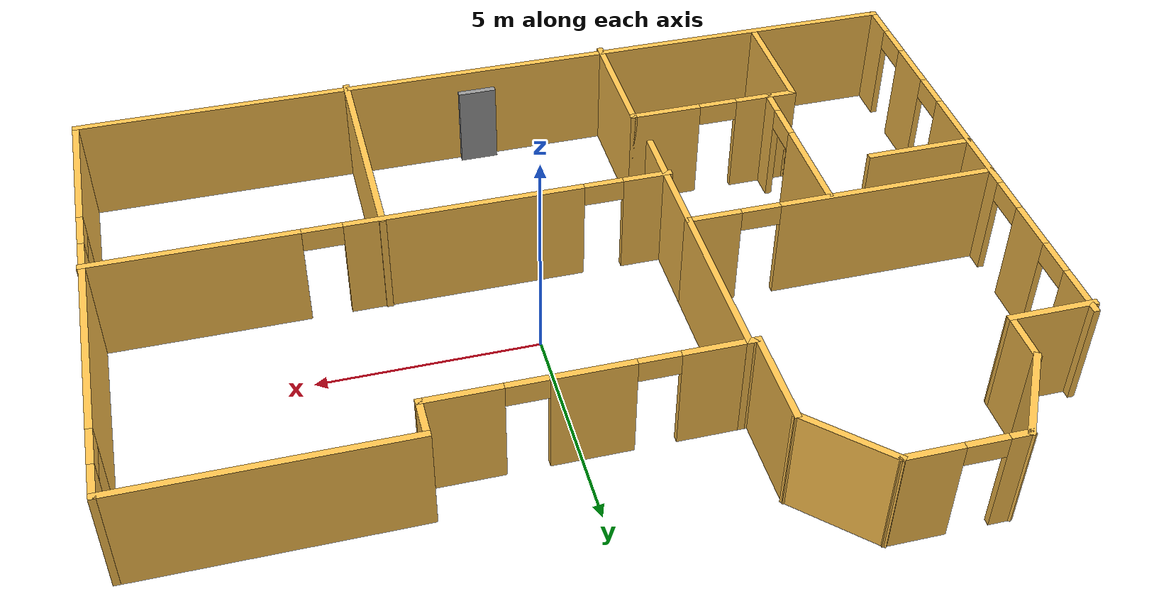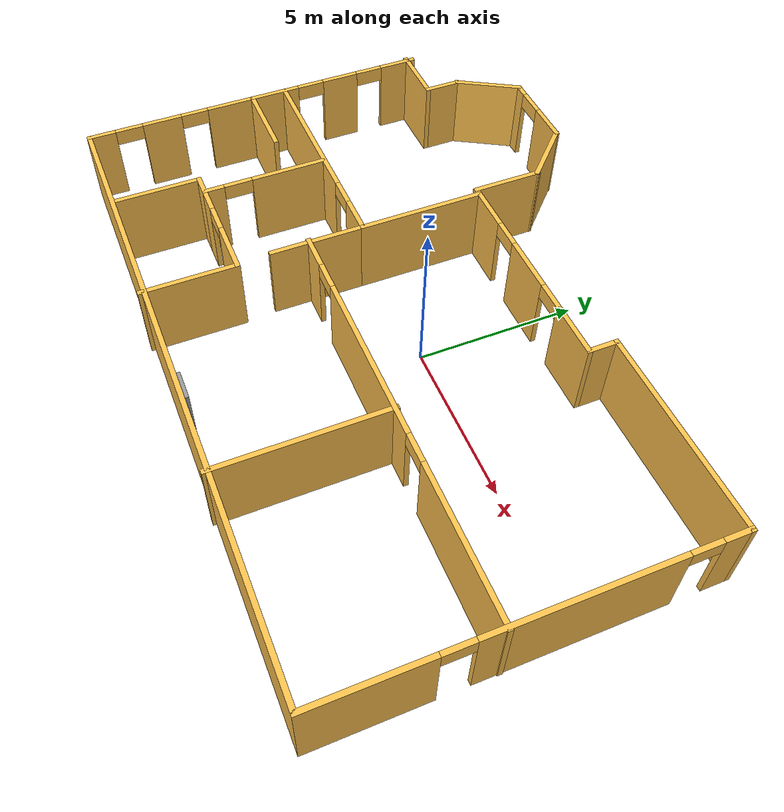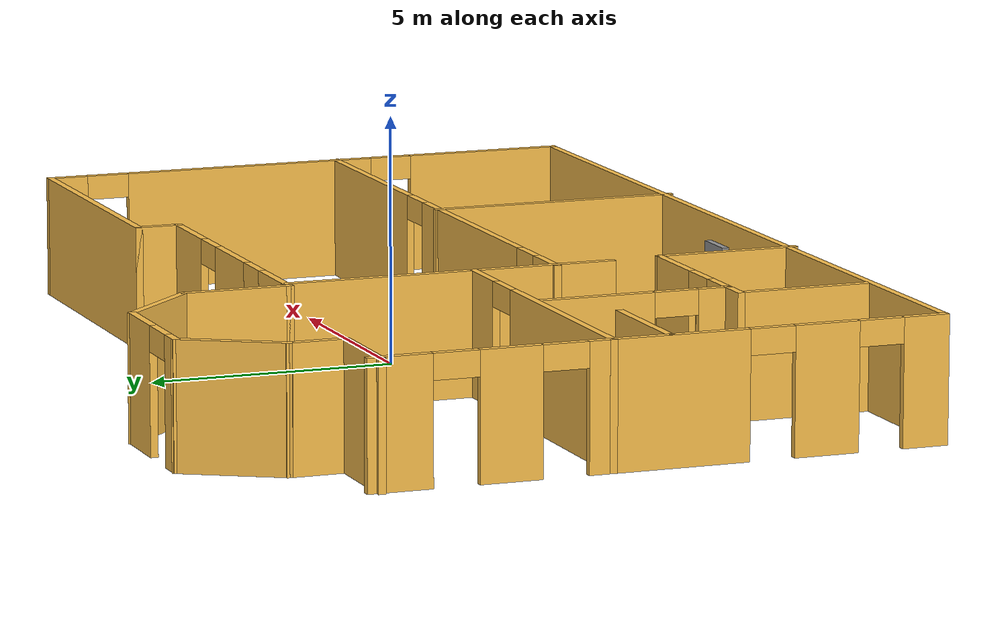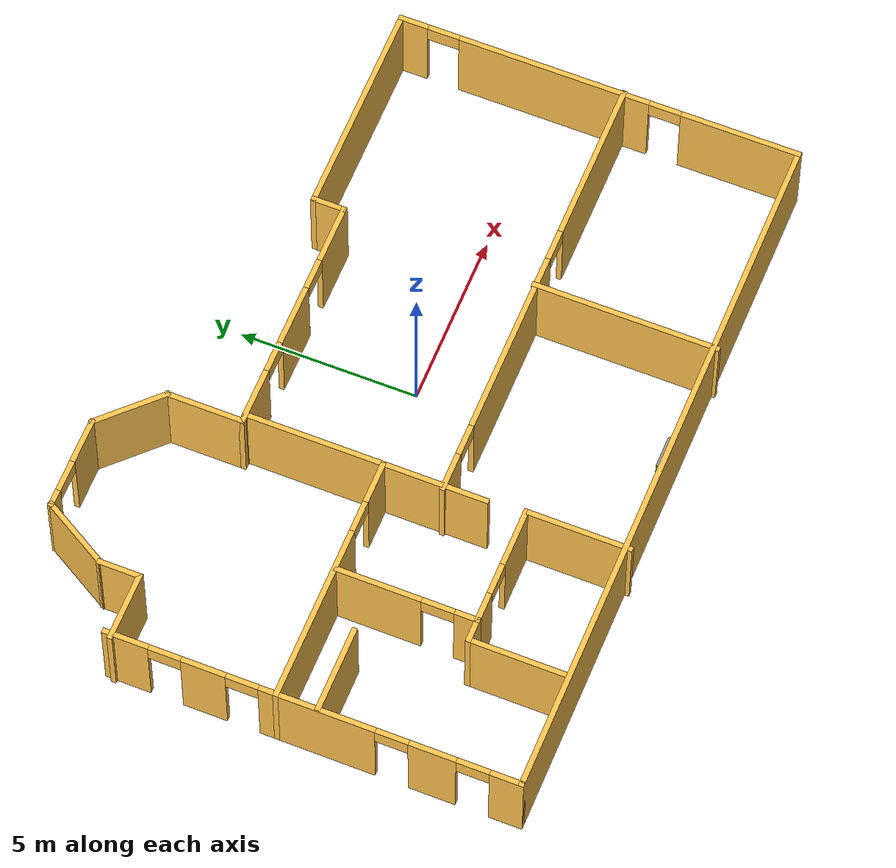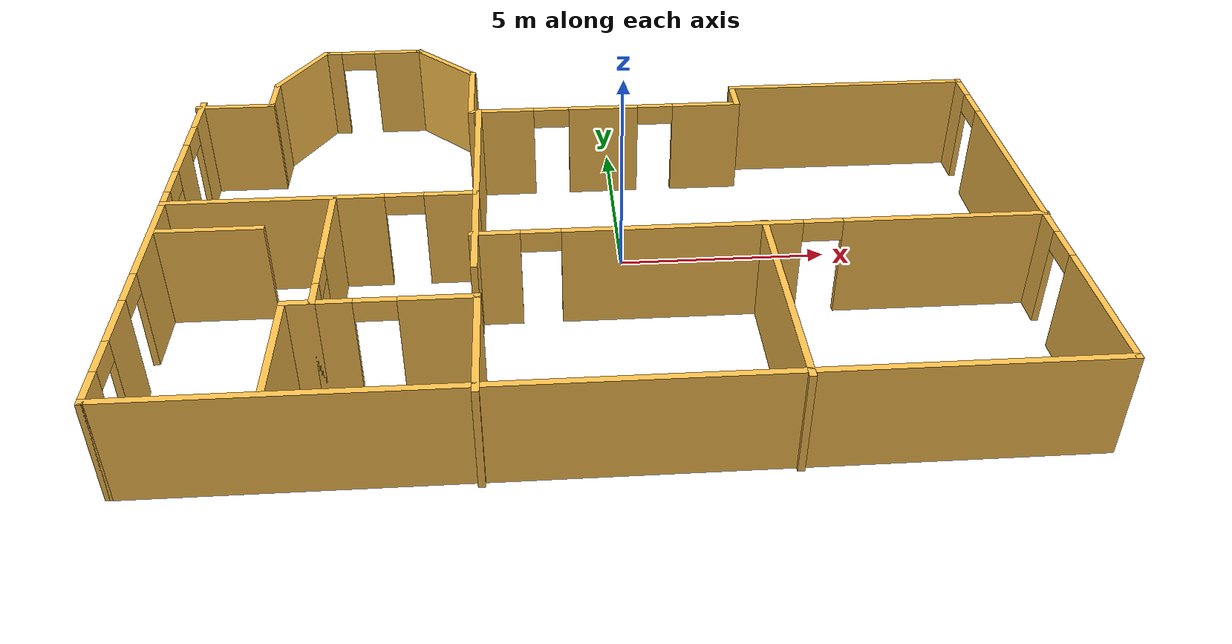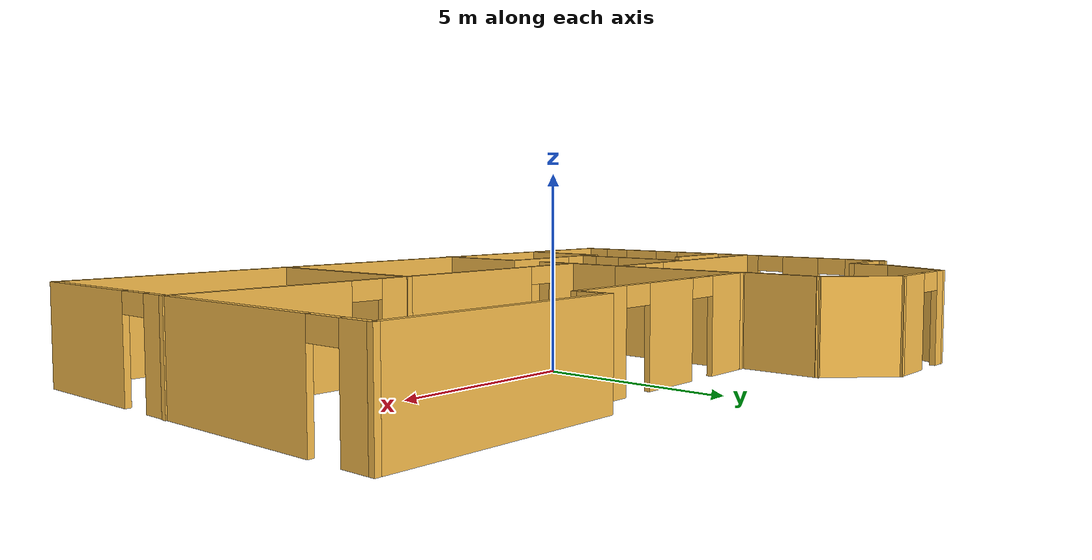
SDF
<?xml version='1.0'?>
<sdf version='1.7'>
  <model name='nha2'>
    <pose>-0.613802 -0.118718 0 0 -0 0</pose>
    <link name='Door_12'>
      <collision name='Door_12_Collision'>
        <geometry>
          <box>
            <size>0.9 0.17 2</size>
          </box>
        </geometry>
        <pose>0 0 1 0 -0 0</pose>
      </collision>
      <visual name='Door_12_Visual'>
        <pose>0 0 1 0 -0 0</pose>
        <geometry>
          <box>
            <size>0.9 0.17 2</size>
          </box>
        </geometry>
        <material>
          <script>
            <uri>file://media/materials/scripts/gazebo.material</uri>
            <name>Gazebo/Grey</name>
          </script>
        </material>
      </visual>
      <pose>0.495654 -6.86658 0 0 -0 0</pose>
    </link>
    <link name='Wall_0'>
      <pose>-9.89882 -1.32378 0 0 -0 -1.5708</pose>
      <visual name='Wall_0_Visual_0'>
        <pose>-5.11418 0 1.25 0 -0 0</pose>
        <geometry>
          <box>
            <size>1.27165 0.15 2.5</size>
          </box>
        </geometry>
        <material>
          <script>
            <uri>file://media/materials/scripts/gazebo.material</uri>
            <name>Gazebo/Grey</name>
          </script>
          <ambient>1 0.764706 0.305882 1</ambient>
        </material>
        <meta>
          <layer>0</layer>
        </meta>
      </visual>
      <collision name='Wall_0_Collision_0'>
        <geometry>
          <box>
            <size>1.27165 0.15 2.5</size>
          </box>
        </geometry>
        <pose>-5.11418 0 1.25 0 -0 0</pose>
      </collision>
      <visual name='Wall_0_Visual_1'>
        <pose>-2.96489 0 1.25 0 -0 0</pose>
        <geometry>
          <box>
            <size>1.22692 0.15 2.5</size>
          </box>
        </geometry>
        <material>
          <script>
            <uri>file://media/materials/scripts/gazebo.material</uri>
            <name>Gazebo/Grey</name>
          </script>
          <ambient>1 0.764706 0.305882 1</ambient>
        </material>
        <meta>
          <layer>0</layer>
        </meta>
      </visual>
      <collision name='Wall_0_Collision_1'>
        <geometry>
          <box>
            <size>1.22692 0.15 2.5</size>
          </box>
        </geometry>
        <pose>-2.96489 0 1.25 0 -0 0</pose>
      </collision>
      <visual name='Wall_0_Visual_2'>
        <pose>0.13973 0 1.25 0 -0 0</pose>
        <geometry>
          <box>
            <size>3.18232 0.15 2.5</size>
          </box>
        </geometry>
        <material>
          <script>
            <uri>file://media/materials/scripts/gazebo.material</uri>
            <name>Gazebo/Grey</name>
          </script>
          <ambient>1 0.764706 0.305882 1</ambient>
        </material>
        <meta>
          <layer>0</layer>
        </meta>
      </visual>
      <collision name='Wall_0_Collision_2'>
        <geometry>
          <box>
            <size>3.18232 0.15 2.5</size>
          </box>
        </geometry>
        <pose>0.13973 0 1.25 0 -0 0</pose>
      </collision>
      <visual name='Wall_0_Visual_3'>
        <pose>3.27866 0 1.25 0 -0 0</pose>
        <geometry>
          <box>
            <size>1.29553 0.15 2.5</size>
          </box>
        </geometry>
        <material>
          <script>
            <uri>file://media/materials/scripts/gazebo.material</uri>
            <name>Gazebo/Grey</name>
          </script>
          <ambient>1 0.764706 0.305882 1</ambient>
        </material>
        <meta>
          <layer>0</layer>
        </meta>
      </visual>
      <collision name='Wall_0_Collision_3'>
        <geometry>
          <box>
            <size>1.29553 0.15 2.5</size>
          </box>
        </geometry>
        <pose>3.27866 0 1.25 0 -0 0</pose>
      </collision>
      <visual name='Wall_0_Visual_4'>
        <pose>5.28821 0 1.25 0 -0 0</pose>
        <geometry>
          <box>
            <size>0.923578 0.15 2.5</size>
          </box>
        </geometry>
        <material>
          <script>
            <uri>file://media/materials/scripts/gazebo.material</uri>
            <name>Gazebo/Grey</name>
          </script>
          <ambient>1 0.764706 0.305882 1</ambient>
        </material>
        <meta>
          <layer>0</layer>
        </meta>
      </visual>
      <collision name='Wall_0_Collision_4'>
        <geometry>
          <box>
            <size>0.923578 0.15 2.5</size>
          </box>
        </geometry>
        <pose>5.28821 0 1.25 0 -0 0</pose>
      </collision>
      <visual name='Wall_0_Visual_5'>
        <pose>-4.02835 0 2.25 0 -0 0</pose>
        <geometry>
          <box>
            <size>0.9 0.15 0.5</size>
          </box>
        </geometry>
        <material>
          <script>
            <uri>file://media/materials/scripts/gazebo.material</uri>
            <name>Gazebo/Grey</name>
          </script>
          <ambient>1 0.764706 0.305882 1</ambient>
        </material>
        <meta>
          <layer>0</layer>
        </meta>
      </visual>
      <collision name='Wall_0_Collision_5'>
        <geometry>
          <box>
            <size>0.9 0.15 0.5</size>
          </box>
        </geometry>
        <pose>-4.02835 0 2.25 0 -0 0</pose>
      </collision>
      <visual name='Wall_0_Visual_6'>
        <pose>-1.90143 0 2.25 0 -0 0</pose>
        <geometry>
          <box>
            <size>0.9 0.15 0.5</size>
          </box>
        </geometry>
        <material>
          <script>
            <uri>file://media/materials/scripts/gazebo.material</uri>
            <name>Gazebo/Grey</name>
          </script>
          <ambient>1 0.764706 0.305882 1</ambient>
        </material>
        <meta>
          <layer>0</layer>
        </meta>
      </visual>
      <collision name='Wall_0_Collision_6'>
        <geometry>
          <box>
            <size>0.9 0.15 0.5</size>
          </box>
        </geometry>
        <pose>-1.90143 0 2.25 0 -0 0</pose>
      </collision>
      <visual name='Wall_0_Visual_7'>
        <pose>2.18089 0 2.25 0 -0 0</pose>
        <geometry>
          <box>
            <size>0.9 0.15 0.5</size>
          </box>
        </geometry>
        <material>
          <script>
            <uri>file://media/materials/scripts/gazebo.material</uri>
            <name>Gazebo/Grey</name>
          </script>
          <ambient>1 0.764706 0.305882 1</ambient>
        </material>
        <meta>
          <layer>0</layer>
        </meta>
      </visual>
      <collision name='Wall_0_Collision_7'>
        <geometry>
          <box>
            <size>0.9 0.15 0.5</size>
          </box>
        </geometry>
        <pose>2.18089 0 2.25 0 -0 0</pose>
      </collision>
      <visual name='Wall_0_Visual_8'>
        <pose>4.37642 0 2.25 0 -0 0</pose>
        <geometry>
          <box>
            <size>0.9 0.15 0.5</size>
          </box>
        </geometry>
        <material>
          <script>
            <uri>file://media/materials/scripts/gazebo.material</uri>
            <name>Gazebo/Grey</name>
          </script>
          <ambient>1 0.764706 0.305882 1</ambient>
        </material>
        <meta>
          <layer>0</layer>
        </meta>
      </visual>
      <collision name='Wall_0_Collision_8'>
        <geometry>
          <box>
            <size>0.9 0.15 0.5</size>
          </box>
        </geometry>
        <pose>4.37642 0 2.25 0 -0 0</pose>
      </collision>
    </link>
    <link name='Wall_1'>
      <collision name='Wall_1_Collision'>
        <geometry>
          <box>
            <size>20 0.15 2.5</size>
          </box>
        </geometry>
        <pose>0 0 1.25 0 -0 0</pose>
      </collision>
      <visual name='Wall_1_Visual'>
        <pose>0 0 1.25 0 -0 0</pose>
        <geometry>
          <box>
            <size>20 0.15 2.5</size>
          </box>
        </geometry>
        <material>
          <script>
            <uri>file://media/materials/scripts/gazebo.material</uri>
            <name>Gazebo/Grey</name>
          </script>
          <ambient>1 0.764706 0.305882 1</ambient>
        </material>
        <meta>
          <layer>0</layer>
        </meta>
      </visual>
      <pose>0.02618 -6.99878 0 0 -0 0</pose>
    </link>
    <link name='Wall_15'>
      <collision name='Wall_15_Collision'>
        <geometry>
          <box>
            <size>1.25 0.15 2.5</size>
          </box>
        </geometry>
        <pose>0 0 1.25 0 -0 0</pose>
      </collision>
      <visual name='Wall_15_Visual'>
        <pose>0 0 1.25 0 -0 0</pose>
        <geometry>
          <box>
            <size>1.25 0.15 2.5</size>
          </box>
        </geometry>
        <material>
          <script>
            <uri>file://media/materials/scripts/gazebo.material</uri>
            <name>Gazebo/Grey</name>
          </script>
          <ambient>1 0.764706 0.305882 1</ambient>
        </material>
        <meta>
          <layer>0</layer>
        </meta>
      </visual>
      <pose>-8.13374 4.71749 0 0 -0 -1.5708</pose>
    </link>
    <link name='Wall_16'>
      <collision name='Wall_16_Collision'>
        <geometry>
          <box>
            <size>2 0.15 2.5</size>
          </box>
        </geometry>
        <pose>0 0 1.25 0 -0 0</pose>
      </collision>
      <visual name='Wall_16_Visual'>
        <pose>0 0 1.25 0 -0 0</pose>
        <geometry>
          <box>
            <size>2 0.15 2.5</size>
          </box>
        </geometry>
        <material>
          <script>
            <uri>file://media/materials/scripts/gazebo.material</uri>
            <name>Gazebo/Grey</name>
          </script>
          <ambient>1 0.764706 0.305882 1</ambient>
        </material>
        <meta>
          <layer>0</layer>
        </meta>
      </visual>
      <pose>-9.05874 4.16749 0 0 -0 3.14159</pose>
    </link>
    <link name='Wall_18'>
      <pose>-6.34882 -0.348596 0 0 -0 0</pose>
      <visual name='Wall_18_Visual_0'>
        <pose>-1.08524 0 1.25 0 -0 0</pose>
        <geometry>
          <box>
            <size>5.07953 0.15 2.5</size>
          </box>
        </geometry>
        <material>
          <script>
            <uri>file://media/materials/scripts/gazebo.material</uri>
            <name>Gazebo/Grey</name>
          </script>
          <ambient>1 0.764706 0.305882 1</ambient>
        </material>
        <meta>
          <layer>0</layer>
        </meta>
      </visual>
      <collision name='Wall_18_Collision_0'>
        <geometry>
          <box>
            <size>5.07953 0.15 2.5</size>
          </box>
        </geometry>
        <pose>-1.08524 0 1.25 0 -0 0</pose>
      </collision>
      <visual name='Wall_18_Visual_1'>
        <pose>2.98976 0 1.25 0 -0 0</pose>
        <geometry>
          <box>
            <size>1.27047 0.15 2.5</size>
          </box>
        </geometry>
        <material>
          <script>
            <uri>file://media/materials/scripts/gazebo.material</uri>
            <name>Gazebo/Grey</name>
          </script>
          <ambient>1 0.764706 0.305882 1</ambient>
        </material>
        <meta>
          <layer>0</layer>
        </meta>
      </visual>
      <collision name='Wall_18_Collision_1'>
        <geometry>
          <box>
            <size>1.27047 0.15 2.5</size>
          </box>
        </geometry>
        <pose>2.98976 0 1.25 0 -0 0</pose>
      </collision>
      <visual name='Wall_18_Visual_2'>
        <pose>1.90453 0 2.25 0 -0 0</pose>
        <geometry>
          <box>
            <size>0.9 0.15 0.5</size>
          </box>
        </geometry>
        <material>
          <script>
            <uri>file://media/materials/scripts/gazebo.material</uri>
            <name>Gazebo/Grey</name>
          </script>
          <ambient>1 0.764706 0.305882 1</ambient>
        </material>
        <meta>
          <layer>0</layer>
        </meta>
      </visual>
      <collision name='Wall_18_Collision_2'>
        <geometry>
          <box>
            <size>0.9 0.15 0.5</size>
          </box>
        </geometry>
        <pose>1.90453 0 2.25 0 -0 0</pose>
      </collision>
    </link>
    <link name='Wall_19'>
      <collision name='Wall_19_Collision'>
        <geometry>
          <box>
            <size>4 0.15 2.5</size>
          </box>
        </geometry>
        <pose>0 0 1.25 0 -0 0</pose>
      </collision>
      <visual name='Wall_19_Visual'>
        <pose>0 0 1.25 0 -0 0</pose>
        <geometry>
          <box>
            <size>4 0.15 2.5</size>
          </box>
        </geometry>
        <material>
          <script>
            <uri>file://media/materials/scripts/gazebo.material</uri>
            <name>Gazebo/Grey</name>
          </script>
          <ambient>1 0.764706 0.305882 1</ambient>
        </material>
        <meta>
          <layer>0</layer>
        </meta>
      </visual>
      <pose>-2.79882 1.5764 0 0 -0 1.5708</pose>
    </link>
    <link name='Wall_2'>
      <pose>9.95118 -1.32378 0 0 -0 1.5708</pose>
      <visual name='Wall_2_Visual_0'>
        <pose>-4.05322 0 1.25 0 -0 0</pose>
        <geometry>
          <box>
            <size>3.39355 0.15 2.5</size>
          </box>
        </geometry>
        <material>
          <script>
            <uri>file://media/materials/scripts/gazebo.material</uri>
            <name>Gazebo/Grey</name>
          </script>
          <ambient>1 0.764706 0.305882 1</ambient>
        </material>
        <meta>
          <layer>0</layer>
        </meta>
      </visual>
      <collision name='Wall_2_Collision_0'>
        <geometry>
          <box>
            <size>3.39355 0.15 2.5</size>
          </box>
        </geometry>
        <pose>-4.05322 0 1.25 0 -0 0</pose>
      </collision>
      <visual name='Wall_2_Visual_1'>
        <pose>1.26678 0 1.25 0 -0 0</pose>
        <geometry>
          <box>
            <size>5.44646 0.15 2.5</size>
          </box>
        </geometry>
        <material>
          <script>
            <uri>file://media/materials/scripts/gazebo.material</uri>
            <name>Gazebo/Grey</name>
          </script>
          <ambient>1 0.764706 0.305882 1</ambient>
        </material>
        <meta>
          <layer>0</layer>
        </meta>
      </visual>
      <collision name='Wall_2_Collision_1'>
        <geometry>
          <box>
            <size>5.44646 0.15 2.5</size>
          </box>
        </geometry>
        <pose>1.26678 0 1.25 0 -0 0</pose>
      </collision>
      <visual name='Wall_2_Visual_2'>
        <pose>5.32001 0 1.25 0 -0 0</pose>
        <geometry>
          <box>
            <size>0.859987 0.15 2.5</size>
          </box>
        </geometry>
        <material>
          <script>
            <uri>file://media/materials/scripts/gazebo.material</uri>
            <name>Gazebo/Grey</name>
          </script>
          <ambient>1 0.764706 0.305882 1</ambient>
        </material>
        <meta>
          <layer>0</layer>
        </meta>
      </visual>
      <collision name='Wall_2_Collision_2'>
        <geometry>
          <box>
            <size>0.859987 0.15 2.5</size>
          </box>
        </geometry>
        <pose>5.32001 0 1.25 0 -0 0</pose>
      </collision>
      <visual name='Wall_2_Visual_3'>
        <pose>-1.90645 0 2.25 0 -0 0</pose>
        <geometry>
          <box>
            <size>0.9 0.15 0.5</size>
          </box>
        </geometry>
        <material>
          <script>
            <uri>file://media/materials/scripts/gazebo.material</uri>
            <name>Gazebo/Grey</name>
          </script>
          <ambient>1 0.764706 0.305882 1</ambient>
        </material>
        <meta>
          <layer>0</layer>
        </meta>
      </visual>
      <collision name='Wall_2_Collision_3'>
        <geometry>
          <box>
            <size>0.9 0.15 0.5</size>
          </box>
        </geometry>
        <pose>-1.90645 0 2.25 0 -0 0</pose>
      </collision>
      <visual name='Wall_2_Visual_4'>
        <pose>4.44001 0 2.25 0 -0 0</pose>
        <geometry>
          <box>
            <size>0.9 0.15 0.5</size>
          </box>
        </geometry>
        <material>
          <script>
            <uri>file://media/materials/scripts/gazebo.material</uri>
            <name>Gazebo/Grey</name>
          </script>
          <ambient>1 0.764706 0.305882 1</ambient>
        </material>
        <meta>
          <layer>0</layer>
        </meta>
      </visual>
      <collision name='Wall_2_Collision_4'>
        <geometry>
          <box>
            <size>0.9 0.15 0.5</size>
          </box>
        </geometry>
        <pose>4.44001 0 2.25 0 -0 0</pose>
      </collision>
    </link>
    <link name='Wall_21'>
      <pose>-6.05664 -2.34221 0 0 -0 -1.5708</pose>
      <visual name='Wall_21_Visual_0'>
        <pose>-0.79814 0 1.25 0 -0 0</pose>
        <geometry>
          <box>
            <size>2.40372 0.15 2.5</size>
          </box>
        </geometry>
        <material>
          <script>
            <uri>file://media/materials/scripts/gazebo.material</uri>
            <name>Gazebo/Grey</name>
          </script>
          <ambient>1 0.764706 0.305882 1</ambient>
        </material>
        <meta>
          <layer>0</layer>
        </meta>
      </visual>
      <collision name='Wall_21_Collision_0'>
        <geometry>
          <box>
            <size>2.40372 0.15 2.5</size>
          </box>
        </geometry>
        <pose>-0.79814 0 1.25 0 -0 0</pose>
      </collision>
      <visual name='Wall_21_Visual_1'>
        <pose>1.65186 0 1.25 0 -0 0</pose>
        <geometry>
          <box>
            <size>0.696279 0.15 2.5</size>
          </box>
        </geometry>
        <material>
          <script>
            <uri>file://media/materials/scripts/gazebo.material</uri>
            <name>Gazebo/Grey</name>
          </script>
          <ambient>1 0.764706 0.305882 1</ambient>
        </material>
        <meta>
          <layer>0</layer>
        </meta>
      </visual>
      <collision name='Wall_21_Collision_1'>
        <geometry>
          <box>
            <size>0.696279 0.15 2.5</size>
          </box>
        </geometry>
        <pose>1.65186 0 1.25 0 -0 0</pose>
      </collision>
      <visual name='Wall_21_Visual_2'>
        <pose>0.853721 0 2.25 0 -0 0</pose>
        <geometry>
          <box>
            <size>0.9 0.15 0.5</size>
          </box>
        </geometry>
        <material>
          <script>
            <uri>file://media/materials/scripts/gazebo.material</uri>
            <name>Gazebo/Grey</name>
          </script>
          <ambient>1 0.764706 0.305882 1</ambient>
        </material>
        <meta>
          <layer>0</layer>
        </meta>
      </visual>
      <collision name='Wall_21_Collision_2'>
        <geometry>
          <box>
            <size>0.9 0.15 0.5</size>
          </box>
        </geometry>
        <pose>0.853721 0 2.25 0 -0 0</pose>
      </collision>
    </link>
    <link name='Wall_22'>
      <collision name='Wall_22_Collision'>
        <geometry>
          <box>
            <size>0.75 0.15 2.5</size>
          </box>
        </geometry>
        <pose>0 0 1.25 0 -0 0</pose>
      </collision>
      <visual name='Wall_22_Visual'>
        <pose>0 0 1.25 0 -0 0</pose>
        <geometry>
          <box>
            <size>0.75 0.15 2.5</size>
          </box>
        </geometry>
        <material>
          <script>
            <uri>file://media/materials/scripts/gazebo.material</uri>
            <name>Gazebo/Grey</name>
          </script>
          <ambient>1 0.764706 0.305882 1</ambient>
        </material>
        <meta>
          <layer>0</layer>
        </meta>
      </visual>
      <pose>-6.35664 -4.26721 0 0 -0 3.14159</pose>
    </link>
    <link name='Wall_23'>
      <collision name='Wall_23_Collision'>
        <geometry>
          <box>
            <size>2.75 0.15 2.5</size>
          </box>
        </geometry>
        <pose>0 0 1.25 0 -0 0</pose>
      </collision>
      <visual name='Wall_23_Visual'>
        <pose>0 0 1.25 0 -0 0</pose>
        <geometry>
          <box>
            <size>2.75 0.15 2.5</size>
          </box>
        </geometry>
        <material>
          <script>
            <uri>file://media/materials/scripts/gazebo.material</uri>
            <name>Gazebo/Grey</name>
          </script>
          <ambient>1 0.764706 0.305882 1</ambient>
        </material>
        <meta>
          <layer>0</layer>
        </meta>
      </visual>
      <pose>-6.65664 -5.56721 0 0 -0 -1.5708</pose>
    </link>
    <link name='Wall_25'>
      <pose>-4.38164 -4.26721 0 0 -0 0</pose>
      <visual name='Wall_25_Visual_0'>
        <pose>-1.30285 0 1.25 0 -0 0</pose>
        <geometry>
          <box>
            <size>0.894292 0.15 2.5</size>
          </box>
        </geometry>
        <material>
          <script>
            <uri>file://media/materials/scripts/gazebo.material</uri>
            <name>Gazebo/Grey</name>
          </script>
          <ambient>1 0.764706 0.305882 1</ambient>
        </material>
        <meta>
          <layer>0</layer>
        </meta>
      </visual>
      <collision name='Wall_25_Collision_0'>
        <geometry>
          <box>
            <size>0.894292 0.15 2.5</size>
          </box>
        </geometry>
        <pose>-1.30285 0 1.25 0 -0 0</pose>
      </collision>
      <visual name='Wall_25_Visual_1'>
        <pose>0.897146 0 1.25 0 -0 0</pose>
        <geometry>
          <box>
            <size>1.70571 0.15 2.5</size>
          </box>
        </geometry>
        <material>
          <script>
            <uri>file://media/materials/scripts/gazebo.material</uri>
            <name>Gazebo/Grey</name>
          </script>
          <ambient>1 0.764706 0.305882 1</ambient>
        </material>
        <meta>
          <layer>0</layer>
        </meta>
      </visual>
      <collision name='Wall_25_Collision_1'>
        <geometry>
          <box>
            <size>1.70571 0.15 2.5</size>
          </box>
        </geometry>
        <pose>0.897146 0 1.25 0 -0 0</pose>
      </collision>
      <visual name='Wall_25_Visual_2'>
        <pose>-0.405708 0 2.25 0 -0 0</pose>
        <geometry>
          <box>
            <size>0.9 0.15 0.5</size>
          </box>
        </geometry>
        <material>
          <script>
            <uri>file://media/materials/scripts/gazebo.material</uri>
            <name>Gazebo/Grey</name>
          </script>
          <ambient>1 0.764706 0.305882 1</ambient>
        </material>
        <meta>
          <layer>0</layer>
        </meta>
      </visual>
      <collision name='Wall_25_Collision_2'>
        <geometry>
          <box>
            <size>0.9 0.15 0.5</size>
          </box>
        </geometry>
        <pose>-0.405708 0 2.25 0 -0 0</pose>
      </collision>
    </link>
    <link name='Wall_26'>
      <collision name='Wall_26_Collision'>
        <geometry>
          <box>
            <size>3 0.15 2.5</size>
          </box>
        </geometry>
        <pose>0 0 1.25 0 -0 0</pose>
      </collision>
      <visual name='Wall_26_Visual'>
        <pose>0 0 1.25 0 -0 0</pose>
        <geometry>
          <box>
            <size>3 0.15 2.5</size>
          </box>
        </geometry>
        <material>
          <script>
            <uri>file://media/materials/scripts/gazebo.material</uri>
            <name>Gazebo/Grey</name>
          </script>
          <ambient>1 0.764706 0.305882 1</ambient>
        </material>
        <meta>
          <layer>0</layer>
        </meta>
      </visual>
      <pose>-2.70664 -5.69221 0 0 -0 -1.5708</pose>
    </link>
    <link name='Wall_28'>
      <collision name='Wall_28_Collision'>
        <geometry>
          <box>
            <size>3 0.15 2.5</size>
          </box>
        </geometry>
        <pose>0 0 1.25 0 -0 0</pose>
      </collision>
      <visual name='Wall_28_Visual'>
        <pose>0 0 1.25 0 -0 0</pose>
        <geometry>
          <box>
            <size>3 0.15 2.5</size>
          </box>
        </geometry>
        <material>
          <script>
            <uri>file://media/materials/scripts/gazebo.material</uri>
            <name>Gazebo/Grey</name>
          </script>
          <ambient>1 0.764706 0.305882 1</ambient>
        </material>
        <meta>
          <layer>0</layer>
        </meta>
      </visual>
      <pose>-2.79882 -1.7736 0 0 -0 -1.5708</pose>
    </link>
    <link name='Wall_3'>
      <collision name='Wall_3_Collision'>
        <geometry>
          <box>
            <size>6.25 0.15 2.5</size>
          </box>
        </geometry>
        <pose>0 0 1.25 0 -0 0</pose>
      </collision>
      <visual name='Wall_3_Visual'>
        <pose>0 0 1.25 0 -0 0</pose>
        <geometry>
          <box>
            <size>6.25 0.15 2.5</size>
          </box>
        </geometry>
        <material>
          <script>
            <uri>file://media/materials/scripts/gazebo.material</uri>
            <name>Gazebo/Grey</name>
          </script>
          <ambient>1 0.764706 0.305882 1</ambient>
        </material>
        <meta>
          <layer>0</layer>
        </meta>
      </visual>
      <pose>6.90118 4.35122 0 0 -0 3.14159</pose>
    </link>
    <link name='Wall_30'>
      <pose>3.55875 -2.02955 0 0 -0 0</pose>
      <visual name='Wall_30_Visual_0'>
        <pose>-5.93279 0 1.25 0 -0 0</pose>
        <geometry>
          <box>
            <size>1.13443 0.15 2.5</size>
          </box>
        </geometry>
        <material>
          <script>
            <uri>file://media/materials/scripts/gazebo.material</uri>
            <name>Gazebo/Grey</name>
          </script>
          <ambient>1 0.764706 0.305882 1</ambient>
        </material>
        <meta>
          <layer>0</layer>
        </meta>
      </visual>
      <collision name='Wall_30_Collision_0'>
        <geometry>
          <box>
            <size>1.13443 0.15 2.5</size>
          </box>
        </geometry>
        <pose>-5.93279 0 1.25 0 -0 0</pose>
      </collision>
      <visual name='Wall_30_Visual_1'>
        <pose>-1.77665 0 1.25 0 -0 0</pose>
        <geometry>
          <box>
            <size>5.37785 0.15 2.5</size>
          </box>
        </geometry>
        <material>
          <script>
            <uri>file://media/materials/scripts/gazebo.material</uri>
            <name>Gazebo/Grey</name>
          </script>
          <ambient>1 0.764706 0.305882 1</ambient>
        </material>
        <meta>
          <layer>0</layer>
        </meta>
      </visual>
      <collision name='Wall_30_Collision_1'>
        <geometry>
          <box>
            <size>5.37785 0.15 2.5</size>
          </box>
        </geometry>
        <pose>-1.77665 0 1.25 0 -0 0</pose>
      </collision>
      <visual name='Wall_30_Visual_2'>
        <pose>4.15614 0 1.25 0 -0 0</pose>
        <geometry>
          <box>
            <size>4.68772 0.15 2.5</size>
          </box>
        </geometry>
        <material>
          <script>
            <uri>file://media/materials/scripts/gazebo.material</uri>
            <name>Gazebo/Grey</name>
          </script>
          <ambient>1 0.764706 0.305882 1</ambient>
        </material>
        <meta>
          <layer>0</layer>
        </meta>
      </visual>
      <collision name='Wall_30_Collision_2'>
        <geometry>
          <box>
            <size>4.68772 0.15 2.5</size>
          </box>
        </geometry>
        <pose>4.15614 0 1.25 0 -0 0</pose>
      </collision>
      <visual name='Wall_30_Visual_3'>
        <pose>-4.91557 0 2.25 0 -0 0</pose>
        <geometry>
          <box>
            <size>0.9 0.15 0.5</size>
          </box>
        </geometry>
        <material>
          <script>
            <uri>file://media/materials/scripts/gazebo.material</uri>
            <name>Gazebo/Grey</name>
          </script>
          <ambient>1 0.764706 0.305882 1</ambient>
        </material>
        <meta>
          <layer>0</layer>
        </meta>
      </visual>
      <collision name='Wall_30_Collision_3'>
        <geometry>
          <box>
            <size>0.9 0.15 0.5</size>
          </box>
        </geometry>
        <pose>-4.91557 0 2.25 0 -0 0</pose>
      </collision>
      <visual name='Wall_30_Visual_4'>
        <pose>1.36228 0 2.25 0 -0 0</pose>
        <geometry>
          <box>
            <size>0.9 0.15 0.5</size>
          </box>
        </geometry>
        <material>
          <script>
            <uri>file://media/materials/scripts/gazebo.material</uri>
            <name>Gazebo/Grey</name>
          </script>
          <ambient>1 0.764706 0.305882 1</ambient>
        </material>
        <meta>
          <layer>0</layer>
        </meta>
      </visual>
      <collision name='Wall_30_Collision_4'>
        <geometry>
          <box>
            <size>0.9 0.15 0.5</size>
          </box>
        </geometry>
        <pose>1.36228 0 2.25 0 -0 0</pose>
      </collision>
    </link>
    <link name='Wall_32'>
      <collision name='Wall_32_Collision'>
        <geometry>
          <box>
            <size>5.25 0.15 2.5</size>
          </box>
        </geometry>
        <pose>0 0 1.25 0 -0 0</pose>
      </collision>
      <visual name='Wall_32_Visual'>
        <pose>0 0 1.25 0 -0 0</pose>
        <geometry>
          <box>
            <size>5.25 0.15 2.5</size>
          </box>
        </geometry>
        <material>
          <script>
            <uri>file://media/materials/scripts/gazebo.material</uri>
            <name>Gazebo/Grey</name>
          </script>
          <ambient>1 0.764706 0.305882 1</ambient>
        </material>
        <meta>
          <layer>0</layer>
        </meta>
      </visual>
      <pose>3.61743 -4.54525 0 0 -0 -1.5708</pose>
    </link>
    <link name='Wall_36'>
      <collision name='Wall_36_Collision'>
        <geometry>
          <box>
            <size>2.5 0.15 2.5</size>
          </box>
        </geometry>
        <pose>0 0 1.25 0 -0 0</pose>
      </collision>
      <visual name='Wall_36_Visual'>
        <pose>0 0 1.25 0 -0 0</pose>
        <geometry>
          <box>
            <size>2.5 0.15 2.5</size>
          </box>
        </geometry>
        <material>
          <script>
            <uri>file://media/materials/scripts/gazebo.material</uri>
            <name>Gazebo/Grey</name>
          </script>
          <ambient>1 0.764706 0.305882 1</ambient>
        </material>
        <meta>
          <layer>0</layer>
        </meta>
      </visual>
      <pose>-8.68952 -1.48067 0 0 -0 0</pose>
    </link>
    <link name='Wall_4'>
      <collision name='Wall_4_Collision'>
        <geometry>
          <box>
            <size>1 0.15 2.5</size>
          </box>
        </geometry>
        <pose>0 0 1.25 0 -0 0</pose>
      </collision>
      <visual name='Wall_4_Visual'>
        <pose>0 0 1.25 0 -0 0</pose>
        <geometry>
          <box>
            <size>1 0.15 2.5</size>
          </box>
        </geometry>
        <material>
          <script>
            <uri>file://media/materials/scripts/gazebo.material</uri>
            <name>Gazebo/Grey</name>
          </script>
          <ambient>1 0.764706 0.305882 1</ambient>
        </material>
        <meta>
          <layer>0</layer>
        </meta>
      </visual>
      <pose>3.85118 3.92622 0 0 -0 -1.5708</pose>
    </link>
    <link name='Wall_5'>
      <pose>0.42618 3.50122 0 0 -0 3.14159</pose>
      <visual name='Wall_5_Visual_0'>
        <pose>-2.62723 0 1.25 0 -0 0</pose>
        <geometry>
          <box>
            <size>1.74554 0.15 2.5</size>
          </box>
        </geometry>
        <material>
          <script>
            <uri>file://media/materials/scripts/gazebo.material</uri>
            <name>Gazebo/Grey</name>
          </script>
          <ambient>1 0.764706 0.305882 1</ambient>
        </material>
        <meta>
          <layer>0</layer>
        </meta>
      </visual>
      <collision name='Wall_5_Collision_0'>
        <geometry>
          <box>
            <size>1.74554 0.15 2.5</size>
          </box>
        </geometry>
        <pose>-2.62723 0 1.25 0 -0 0</pose>
      </collision>
      <visual name='Wall_5_Visual_1'>
        <pose>0.033442 0 1.25 0 -0 0</pose>
        <geometry>
          <box>
            <size>1.77581 0.15 2.5</size>
          </box>
        </geometry>
        <material>
          <script>
            <uri>file://media/materials/scripts/gazebo.material</uri>
            <name>Gazebo/Grey</name>
          </script>
          <ambient>1 0.764706 0.305882 1</ambient>
        </material>
        <meta>
          <layer>0</layer>
        </meta>
      </visual>
      <collision name='Wall_5_Collision_1'>
        <geometry>
          <box>
            <size>1.77581 0.15 2.5</size>
          </box>
        </geometry>
        <pose>0.033442 0 1.25 0 -0 0</pose>
      </collision>
      <visual name='Wall_5_Visual_2'>
        <pose>2.66067 0 1.25 0 -0 0</pose>
        <geometry>
          <box>
            <size>1.67866 0.15 2.5</size>
          </box>
        </geometry>
        <material>
          <script>
            <uri>file://media/materials/scripts/gazebo.material</uri>
            <name>Gazebo/Grey</name>
          </script>
          <ambient>1 0.764706 0.305882 1</ambient>
        </material>
        <meta>
          <layer>0</layer>
        </meta>
      </visual>
      <collision name='Wall_5_Collision_2'>
        <geometry>
          <box>
            <size>1.67866 0.15 2.5</size>
          </box>
        </geometry>
        <pose>2.66067 0 1.25 0 -0 0</pose>
      </collision>
      <visual name='Wall_5_Visual_3'>
        <pose>-1.30446 0 2.25 0 -0 0</pose>
        <geometry>
          <box>
            <size>0.9 0.15 0.5</size>
          </box>
        </geometry>
        <material>
          <script>
            <uri>file://media/materials/scripts/gazebo.material</uri>
            <name>Gazebo/Grey</name>
          </script>
          <ambient>1 0.764706 0.305882 1</ambient>
        </material>
        <meta>
          <layer>0</layer>
        </meta>
      </visual>
      <collision name='Wall_5_Collision_3'>
        <geometry>
          <box>
            <size>0.9 0.15 0.5</size>
          </box>
        </geometry>
        <pose>-1.30446 0 2.25 0 -0 0</pose>
      </collision>
      <visual name='Wall_5_Visual_4'>
        <pose>1.37134 0 2.25 0 -0 0</pose>
        <geometry>
          <box>
            <size>0.9 0.15 0.5</size>
          </box>
        </geometry>
        <material>
          <script>
            <uri>file://media/materials/scripts/gazebo.material</uri>
            <name>Gazebo/Grey</name>
          </script>
          <ambient>1 0.764706 0.305882 1</ambient>
        </material>
        <meta>
          <layer>0</layer>
        </meta>
      </visual>
      <collision name='Wall_5_Collision_4'>
        <geometry>
          <box>
            <size>0.9 0.15 0.5</size>
          </box>
        </geometry>
        <pose>1.37134 0 2.25 0 -0 0</pose>
      </collision>
    </link>
    <link name='Wall_6'>
      <collision name='Wall_6_Collision'>
        <geometry>
          <box>
            <size>2.25 0.15 2.5</size>
          </box>
        </geometry>
        <pose>0 0 1.25 0 -0 0</pose>
      </collision>
      <visual name='Wall_6_Visual'>
        <pose>0 0 1.25 0 -0 0</pose>
        <geometry>
          <box>
            <size>2.25 0.15 2.5</size>
          </box>
        </geometry>
        <material>
          <script>
            <uri>file://media/materials/scripts/gazebo.material</uri>
            <name>Gazebo/Grey</name>
          </script>
          <ambient>1 0.764706 0.305882 1</ambient>
        </material>
        <meta>
          <layer>0</layer>
        </meta>
      </visual>
      <pose>-2.99882 4.55122 0 0 -0 1.5708</pose>
    </link>
    <link name='Wall_7'>
      <collision name='Wall_7_Collision'>
        <geometry>
          <box>
            <size>2.25 0.15 2.5</size>
          </box>
        </geometry>
        <pose>0 0 1.25 0 -0 0</pose>
      </collision>
      <visual name='Wall_7_Visual'>
        <pose>0 0 1.25 0 -0 0</pose>
        <geometry>
          <box>
            <size>2.25 0.15 2.5</size>
          </box>
        </geometry>
        <material>
          <script>
            <uri>file://media/materials/scripts/gazebo.material</uri>
            <name>Gazebo/Grey</name>
          </script>
          <ambient>1 0.764706 0.305882 1</ambient>
        </material>
        <meta>
          <layer>0</layer>
        </meta>
      </visual>
      <pose>-3.74128 6.34368 0 0 -0 2.35619</pose>
    </link>
    <link name='Wall_8'>
      <pose>-5.78374 7.08614 0 0 -0 3.14159</pose>
      <visual name='Wall_8_Visual_0'>
        <pose>-0.707443 0 1.25 0 -0 0</pose>
        <geometry>
          <box>
            <size>1.33512 0.15 2.5</size>
          </box>
        </geometry>
        <material>
          <script>
            <uri>file://media/materials/scripts/gazebo.material</uri>
            <name>Gazebo/Grey</name>
          </script>
          <ambient>1 0.764706 0.305882 1</ambient>
        </material>
        <meta>
          <layer>0</layer>
        </meta>
      </visual>
      <collision name='Wall_8_Collision_0'>
        <geometry>
          <box>
            <size>1.33512 0.15 2.5</size>
          </box>
        </geometry>
        <pose>-0.707443 0 1.25 0 -0 0</pose>
      </collision>
      <visual name='Wall_8_Visual_1'>
        <pose>1.11756 0 1.25 0 -0 0</pose>
        <geometry>
          <box>
            <size>0.514885 0.15 2.5</size>
          </box>
        </geometry>
        <material>
          <script>
            <uri>file://media/materials/scripts/gazebo.material</uri>
            <name>Gazebo/Grey</name>
          </script>
          <ambient>1 0.764706 0.305882 1</ambient>
        </material>
        <meta>
          <layer>0</layer>
        </meta>
      </visual>
      <collision name='Wall_8_Collision_1'>
        <geometry>
          <box>
            <size>0.514885 0.15 2.5</size>
          </box>
        </geometry>
        <pose>1.11756 0 1.25 0 -0 0</pose>
      </collision>
      <visual name='Wall_8_Visual_2'>
        <pose>0.410115 0 2.25 0 -0 0</pose>
        <geometry>
          <box>
            <size>0.9 0.15 0.5</size>
          </box>
        </geometry>
        <material>
          <script>
            <uri>file://media/materials/scripts/gazebo.material</uri>
            <name>Gazebo/Grey</name>
          </script>
          <ambient>1 0.764706 0.305882 1</ambient>
        </material>
        <meta>
          <layer>0</layer>
        </meta>
      </visual>
      <collision name='Wall_8_Collision_2'>
        <geometry>
          <box>
            <size>0.9 0.15 0.5</size>
          </box>
        </geometry>
        <pose>0.410115 0 2.25 0 -0 0</pose>
      </collision>
    </link>
    <link name='Wall_9'>
      <collision name='Wall_9_Collision'>
        <geometry>
          <box>
            <size>2.25 0.15 2.5</size>
          </box>
        </geometry>
        <pose>0 0 1.25 0 -0 0</pose>
      </collision>
      <visual name='Wall_9_Visual'>
        <pose>0 0 1.25 0 -0 0</pose>
        <geometry>
          <box>
            <size>2.25 0.15 2.5</size>
          </box>
        </geometry>
        <material>
          <script>
            <uri>file://media/materials/scripts/gazebo.material</uri>
            <name>Gazebo/Grey</name>
          </script>
          <ambient>1 0.764706 0.305882 1</ambient>
        </material>
        <meta>
          <layer>0</layer>
        </meta>
      </visual>
      <pose>-7.60874 6.17681 0 0 -0 -2.0944</pose>
    </link>
    <static>1</static>
  </model>
</sdf>
